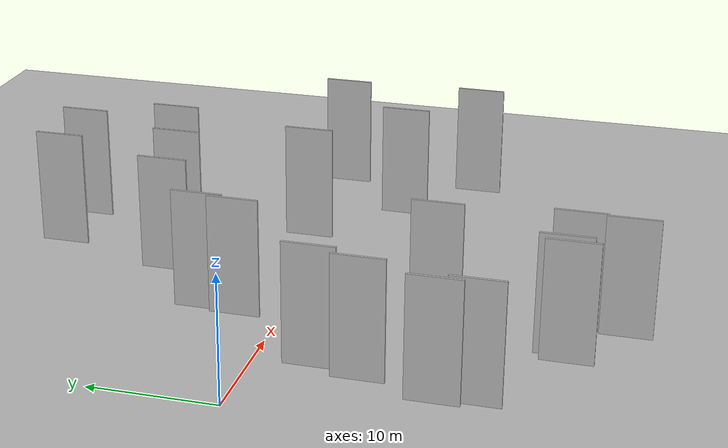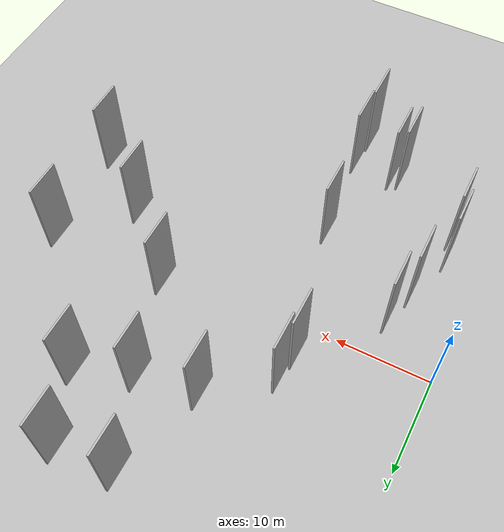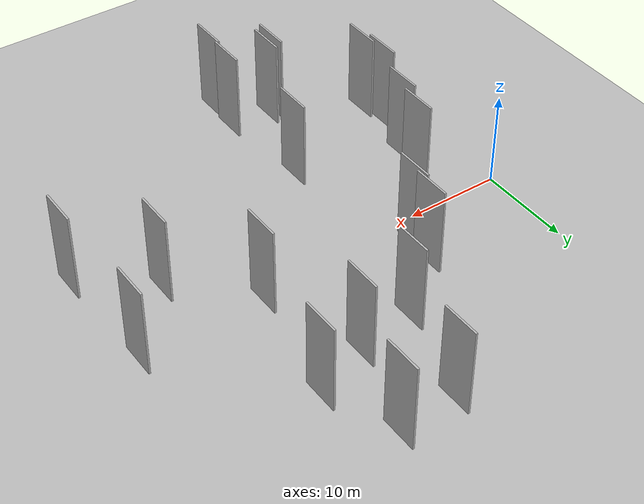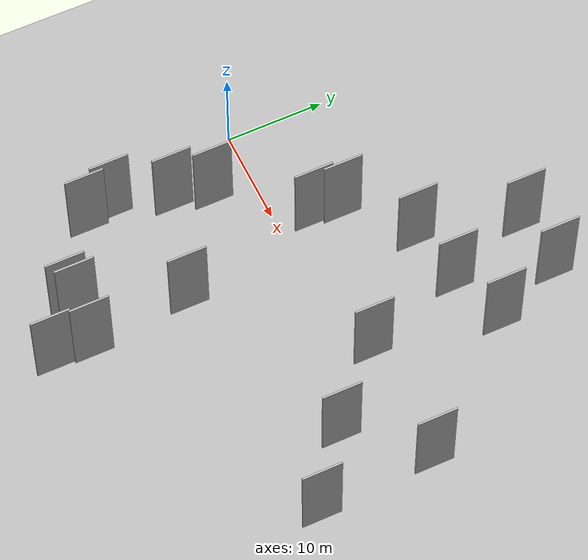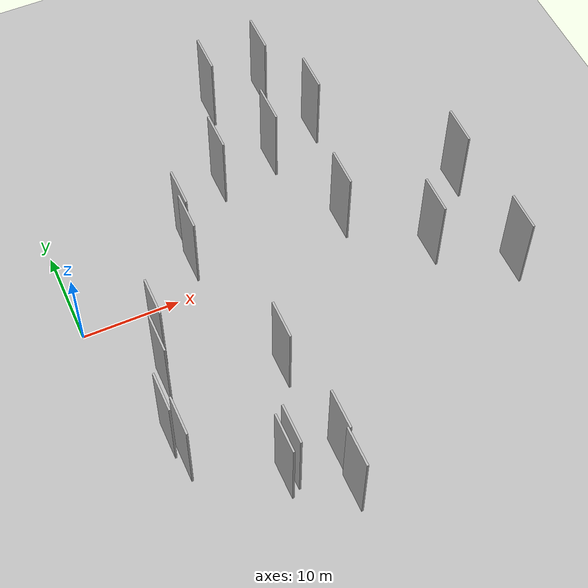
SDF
<?xml version="1.0" encoding="utf-8"?>

<sdf version="1.6">

   <world name="default">

      <gui fullscreen="0">

         <camera name="user_camera">

            <pose>-15 0 4.57585 0 0 0</pose>

            <view_controller>orbit</view_controller>

         </camera>

      </gui>

      <scene>

         <sky>

           <clouds>

             <speed>12</speed>

           </clouds>

         </sky>

         <ambient>0.4 0.4 0.4 1</ambient>

         <background>0.7 0.7 0.7 1</background>

         <shadows>1</shadows>

      </scene>

      <gravity>0 0 -9.8066</gravity>

      <magnetic_field>6e-06 2.3e-05 -4.2e-05</magnetic_field>

      <physics default="0" name="default_physics" type="ode">

         <ode>

            <solver>

               <type>quick</type>

               <iters>10</iters>

               <sor>1.0</sor>

               <use_dynamic_moi_rescaling>0</use_dynamic_moi_rescaling>

            </solver>

            <constraints>

               <cfm>0</cfm>

               <erp>0.2</erp>

               <contact_max_correcting_vel>100</contact_max_correcting_vel>

               <contact_surface_layer>0.001</contact_surface_layer>

            </constraints>

         </ode>

         <max_step_size>0.004</max_step_size>

         <real_time_factor>1</real_time_factor>

         <real_time_update_rate>250</real_time_update_rate>

      </physics>

      <light name="sun" type="directional">

         <cast_shadows>1</cast_shadows>

         <pose>0 0 10 0 0 0</pose>

         <diffuse>0.8 0.8 0.8 1</diffuse>

         <specular>0.2 0.2 0.2 1</specular>

         <attenuation>

            <range>1000</range>

            <constant>0.9</constant>

            <linear>0.01</linear>

            <quadratic>0.001</quadratic>

         </attenuation>

         <direction>-0.5 0.1 -0.9</direction>

      </light>

      <include>

         <name>ground_plane_1</name>

         <uri>model://HANNAS_ground_plane</uri>

         <pose>0 0 0  0 0 0</pose>

      </include>

      <include>

         <name>ground_plane_2</name>

         <uri>model://HANNAS_ground_plane</uri>

         <pose>100 0 0  0 0 0</pose>

      </include>

      <model name="HANNAS_wall_1">

         <static>1</static>

         <pose frame="">3.5172 -14.0131 0.0 0.000000 0.000000 1.570796</pose>

         <link name="link">

            <pose frame="">0 0 5.00 0 0 0</pose>

            <collision name="collision">

               <geometry>

                  <box>

                     <size>4.00 0.2 10.00</size>

                  </box>

               </geometry>

               <max_contacts>10</max_contacts>

               <surface>

                  <contact>

                     <ode/>

                  </contact>

                  <bounce/>

                  <friction>

                     <torsional>

                        <ode/>

                     </torsional>

                     <ode/>

                  </friction>

               </surface>

            </collision>

            <visual name="visual">

               <cast_shadows>0</cast_shadows>

               <geometry>

                  <box>

                     <size>4.00 0.2 10.00</size>

                  </box>

               </geometry>

               <material>

                  <script>

                     <uri>model://HANNAS_wall/materials/scripts</uri>

                     <uri>model://HANNAS_wall/materials/textures</uri>

                     <name>vrc/HANNAS_wall</name>

                  </script>

               </material>

            </visual>

            <self_collide>0</self_collide>

            <enable_wind>0</enable_wind>

            <kinematic>0</kinematic>

         </link>

      </model>

      <model name="HANNAS_wall_2">

         <static>1</static>

         <pose frame="">5.2974 -8.2992 0.0 0.000000 0.000000 1.570796</pose>

         <link name="link">

            <pose frame="">0 0 5.00 0 0 0</pose>

            <collision name="collision">

               <geometry>

                  <box>

                     <size>4.00 0.2 10.00</size>

                  </box>

               </geometry>

               <max_contacts>10</max_contacts>

               <surface>

                  <contact>

                     <ode/>

                  </contact>

                  <bounce/>

                  <friction>

                     <torsional>

                        <ode/>

                     </torsional>

                     <ode/>

                  </friction>

               </surface>

            </collision>

            <visual name="visual">

               <cast_shadows>0</cast_shadows>

               <geometry>

                  <box>

                     <size>4.00 0.2 10.00</size>

                  </box>

               </geometry>

               <material>

                  <script>

                     <uri>model://HANNAS_wall/materials/scripts</uri>

                     <uri>model://HANNAS_wall/materials/textures</uri>

                     <name>vrc/HANNAS_wall</name>

                  </script>

               </material>

            </visual>

            <self_collide>0</self_collide>

            <enable_wind>0</enable_wind>

            <kinematic>0</kinematic>

         </link>

      </model>

      <model name="HANNAS_wall_3">

         <static>1</static>

         <pose frame="">19.0728 11.2092 0.0 0.000000 0.000000 1.570796</pose>

         <link name="link">

            <pose frame="">0 0 5.00 0 0 0</pose>

            <collision name="collision">

               <geometry>

                  <box>

                     <size>4.00 0.2 10.00</size>

                  </box>

               </geometry>

               <max_contacts>10</max_contacts>

               <surface>

                  <contact>

                     <ode/>

                  </contact>

                  <bounce/>

                  <friction>

                     <torsional>

                        <ode/>

                     </torsional>

                     <ode/>

                  </friction>

               </surface>

            </collision>

            <visual name="visual">

               <cast_shadows>0</cast_shadows>

               <geometry>

                  <box>

                     <size>4.00 0.2 10.00</size>

                  </box>

               </geometry>

               <material>

                  <script>

                     <uri>model://HANNAS_wall/materials/scripts</uri>

                     <uri>model://HANNAS_wall/materials/textures</uri>

                     <name>vrc/HANNAS_wall</name>

                  </script>

               </material>

            </visual>

            <self_collide>0</self_collide>

            <enable_wind>0</enable_wind>

            <kinematic>0</kinematic>

         </link>

      </model>

      <model name="HANNAS_wall_4">

         <static>1</static>

         <pose frame="">21.9829 21.2277 0.0 0.000000 0.000000 1.570796</pose>

         <link name="link">

            <pose frame="">0 0 5.00 0 0 0</pose>

            <collision name="collision">

               <geometry>

                  <box>

                     <size>4.00 0.2 10.00</size>

                  </box>

               </geometry>

               <max_contacts>10</max_contacts>

               <surface>

                  <contact>

                     <ode/>

                  </contact>

                  <bounce/>

                  <friction>

                     <torsional>

                        <ode/>

                     </torsional>

                     <ode/>

                  </friction>

               </surface>

            </collision>

            <visual name="visual">

               <cast_shadows>0</cast_shadows>

               <geometry>

                  <box>

                     <size>4.00 0.2 10.00</size>

                  </box>

               </geometry>

               <material>

                  <script>

                     <uri>model://HANNAS_wall/materials/scripts</uri>

                     <uri>model://HANNAS_wall/materials/textures</uri>

                     <name>vrc/HANNAS_wall</name>

                  </script>

               </material>

            </visual>

            <self_collide>0</self_collide>

            <enable_wind>0</enable_wind>

            <kinematic>0</kinematic>

         </link>

      </model>

      <model name="HANNAS_wall_5">

         <static>1</static>

         <pose frame="">11.7476 -22.0610 0.0 0.000000 0.000000 1.570796</pose>

         <link name="link">

            <pose frame="">0 0 5.00 0 0 0</pose>

            <collision name="collision">

               <geometry>

                  <box>

                     <size>4.00 0.2 10.00</size>

                  </box>

               </geometry>

               <max_contacts>10</max_contacts>

               <surface>

                  <contact>

                     <ode/>

                  </contact>

                  <bounce/>

                  <friction>

                     <torsional>

                        <ode/>

                     </torsional>

                     <ode/>

                  </friction>

               </surface>

            </collision>

            <visual name="visual">

               <cast_shadows>0</cast_shadows>

               <geometry>

                  <box>

                     <size>4.00 0.2 10.00</size>

                  </box>

               </geometry>

               <material>

                  <script>

                     <uri>model://HANNAS_wall/materials/scripts</uri>

                     <uri>model://HANNAS_wall/materials/textures</uri>

                     <name>vrc/HANNAS_wall</name>

                  </script>

               </material>

            </visual>

            <self_collide>0</self_collide>

            <enable_wind>0</enable_wind>

            <kinematic>0</kinematic>

         </link>

      </model>

      <model name="HANNAS_wall_6">

         <static>1</static>

         <pose frame="">13.1169 6.1873 0.0 0.000000 0.000000 1.570796</pose>

         <link name="link">

            <pose frame="">0 0 5.00 0 0 0</pose>

            <collision name="collision">

               <geometry>

                  <box>

                     <size>4.00 0.2 10.00</size>

                  </box>

               </geometry>

               <max_contacts>10</max_contacts>

               <surface>

                  <contact>

                     <ode/>

                  </contact>

                  <bounce/>

                  <friction>

                     <torsional>

                        <ode/>

                     </torsional>

                     <ode/>

                  </friction>

               </surface>

            </collision>

            <visual name="visual">

               <cast_shadows>0</cast_shadows>

               <geometry>

                  <box>

                     <size>4.00 0.2 10.00</size>

                  </box>

               </geometry>

               <material>

                  <script>

                     <uri>model://HANNAS_wall/materials/scripts</uri>

                     <uri>model://HANNAS_wall/materials/textures</uri>

                     <name>vrc/HANNAS_wall</name>

                  </script>

               </material>

            </visual>

            <self_collide>0</self_collide>

            <enable_wind>0</enable_wind>

            <kinematic>0</kinematic>

         </link>

      </model>

      <model name="HANNAS_wall_7">

         <static>1</static>

         <pose frame="">28.6198 1.9612 0.0 0.000000 0.000000 1.570796</pose>

         <link name="link">

            <pose frame="">0 0 5.00 0 0 0</pose>

            <collision name="collision">

               <geometry>

                  <box>

                     <size>4.00 0.2 10.00</size>

                  </box>

               </geometry>

               <max_contacts>10</max_contacts>

               <surface>

                  <contact>

                     <ode/>

                  </contact>

                  <bounce/>

                  <friction>

                     <torsional>

                        <ode/>

                     </torsional>

                     <ode/>

                  </friction>

               </surface>

            </collision>

            <visual name="visual">

               <cast_shadows>0</cast_shadows>

               <geometry>

                  <box>

                     <size>4.00 0.2 10.00</size>

                  </box>

               </geometry>

               <material>

                  <script>

                     <uri>model://HANNAS_wall/materials/scripts</uri>

                     <uri>model://HANNAS_wall/materials/textures</uri>

                     <name>vrc/HANNAS_wall</name>

                  </script>

               </material>

            </visual>

            <self_collide>0</self_collide>

            <enable_wind>0</enable_wind>

            <kinematic>0</kinematic>

         </link>

      </model>

      <model name="HANNAS_wall_8">

         <static>1</static>

         <pose frame="">31.0365 14.4860 0.0 0.000000 0.000000 1.570796</pose>

         <link name="link">

            <pose frame="">0 0 5.00 0 0 0</pose>

            <collision name="collision">

               <geometry>

                  <box>

                     <size>4.00 0.2 10.00</size>

                  </box>

               </geometry>

               <max_contacts>10</max_contacts>

               <surface>

                  <contact>

                     <ode/>

                  </contact>

                  <bounce/>

                  <friction>

                     <torsional>

                        <ode/>

                     </torsional>

                     <ode/>

                  </friction>

               </surface>

            </collision>

            <visual name="visual">

               <cast_shadows>0</cast_shadows>

               <geometry>

                  <box>

                     <size>4.00 0.2 10.00</size>

                  </box>

               </geometry>

               <material>

                  <script>

                     <uri>model://HANNAS_wall/materials/scripts</uri>

                     <uri>model://HANNAS_wall/materials/textures</uri>

                     <name>vrc/HANNAS_wall</name>

                  </script>

               </material>

            </visual>

            <self_collide>0</self_collide>

            <enable_wind>0</enable_wind>

            <kinematic>0</kinematic>

         </link>

      </model>

      <model name="HANNAS_wall_9">

         <static>1</static>

         <pose frame="">16.1525 -11.5254 0.0 0.000000 0.000000 1.570796</pose>

         <link name="link">

            <pose frame="">0 0 5.00 0 0 0</pose>

            <collision name="collision">

               <geometry>

                  <box>

                     <size>4.00 0.2 10.00</size>

                  </box>

               </geometry>

               <max_contacts>10</max_contacts>

               <surface>

                  <contact>

                     <ode/>

                  </contact>

                  <bounce/>

                  <friction>

                     <torsional>

                        <ode/>

                     </torsional>

                     <ode/>

                  </friction>

               </surface>

            </collision>

            <visual name="visual">

               <cast_shadows>0</cast_shadows>

               <geometry>

                  <box>

                     <size>4.00 0.2 10.00</size>

                  </box>

               </geometry>

               <material>

                  <script>

                     <uri>model://HANNAS_wall/materials/scripts</uri>

                     <uri>model://HANNAS_wall/materials/textures</uri>

                     <name>vrc/HANNAS_wall</name>

                  </script>

               </material>

            </visual>

            <self_collide>0</self_collide>

            <enable_wind>0</enable_wind>

            <kinematic>0</kinematic>

         </link>

      </model>

      <model name="HANNAS_wall_10">

         <static>1</static>

         <pose frame="">25.2956 12.3357 0.0 0.000000 0.000000 1.570796</pose>

         <link name="link">

            <pose frame="">0 0 5.00 0 0 0</pose>

            <collision name="collision">

               <geometry>

                  <box>

                     <size>4.00 0.2 10.00</size>

                  </box>

               </geometry>

               <max_contacts>10</max_contacts>

               <surface>

                  <contact>

                     <ode/>

                  </contact>

                  <bounce/>

                  <friction>

                     <torsional>

                        <ode/>

                     </torsional>

                     <ode/>

                  </friction>

               </surface>

            </collision>

            <visual name="visual">

               <cast_shadows>0</cast_shadows>

               <geometry>

                  <box>

                     <size>4.00 0.2 10.00</size>

                  </box>

               </geometry>

               <material>

                  <script>

                     <uri>model://HANNAS_wall/materials/scripts</uri>

                     <uri>model://HANNAS_wall/materials/textures</uri>

                     <name>vrc/HANNAS_wall</name>

                  </script>

               </material>

            </visual>

            <self_collide>0</self_collide>

            <enable_wind>0</enable_wind>

            <kinematic>0</kinematic>

         </link>

      </model>

      <model name="HANNAS_wall_11">

         <static>1</static>

         <pose frame="">42.1899 -9.8668 0.0 0.000000 0.000000 1.570796</pose>

         <link name="link">

            <pose frame="">0 0 5.00 0 0 0</pose>

            <collision name="collision">

               <geometry>

                  <box>

                     <size>4.00 0.2 10.00</size>

                  </box>

               </geometry>

               <max_contacts>10</max_contacts>

               <surface>

                  <contact>

                     <ode/>

                  </contact>

                  <bounce/>

                  <friction>

                     <torsional>

                        <ode/>

                     </torsional>

                     <ode/>

                  </friction>

               </surface>

            </collision>

            <visual name="visual">

               <cast_shadows>0</cast_shadows>

               <geometry>

                  <box>

                     <size>4.00 0.2 10.00</size>

                  </box>

               </geometry>

               <material>

                  <script>

                     <uri>model://HANNAS_wall/materials/scripts</uri>

                     <uri>model://HANNAS_wall/materials/textures</uri>

                     <name>vrc/HANNAS_wall</name>

                  </script>

               </material>

            </visual>

            <self_collide>0</self_collide>

            <enable_wind>0</enable_wind>

            <kinematic>0</kinematic>

         </link>

      </model>

      <model name="HANNAS_wall_12">

         <static>1</static>

         <pose frame="">12.6764 -21.4972 0.0 0.000000 0.000000 1.570796</pose>

         <link name="link">

            <pose frame="">0 0 5.00 0 0 0</pose>

            <collision name="collision">

               <geometry>

                  <box>

                     <size>4.00 0.2 10.00</size>

                  </box>

               </geometry>

               <max_contacts>10</max_contacts>

               <surface>

                  <contact>

                     <ode/>

                  </contact>

                  <bounce/>

                  <friction>

                     <torsional>

                        <ode/>

                     </torsional>

                     <ode/>

                  </friction>

               </surface>

            </collision>

            <visual name="visual">

               <cast_shadows>0</cast_shadows>

               <geometry>

                  <box>

                     <size>4.00 0.2 10.00</size>

                  </box>

               </geometry>

               <material>

                  <script>

                     <uri>model://HANNAS_wall/materials/scripts</uri>

                     <uri>model://HANNAS_wall/materials/textures</uri>

                     <name>vrc/HANNAS_wall</name>

                  </script>

               </material>

            </visual>

            <self_collide>0</self_collide>

            <enable_wind>0</enable_wind>

            <kinematic>0</kinematic>

         </link>

      </model>

      <model name="HANNAS_wall_13">

         <static>1</static>

         <pose frame="">16.9391 -25.7244 0.0 0.000000 0.000000 1.570796</pose>

         <link name="link">

            <pose frame="">0 0 5.00 0 0 0</pose>

            <collision name="collision">

               <geometry>

                  <box>

                     <size>4.00 0.2 10.00</size>

                  </box>

               </geometry>

               <max_contacts>10</max_contacts>

               <surface>

                  <contact>

                     <ode/>

                  </contact>

                  <bounce/>

                  <friction>

                     <torsional>

                        <ode/>

                     </torsional>

                     <ode/>

                  </friction>

               </surface>

            </collision>

            <visual name="visual">

               <cast_shadows>0</cast_shadows>

               <geometry>

                  <box>

                     <size>4.00 0.2 10.00</size>

                  </box>

               </geometry>

               <material>

                  <script>

                     <uri>model://HANNAS_wall/materials/scripts</uri>

                     <uri>model://HANNAS_wall/materials/textures</uri>

                     <name>vrc/HANNAS_wall</name>

                  </script>

               </material>

            </visual>

            <self_collide>0</self_collide>

            <enable_wind>0</enable_wind>

            <kinematic>0</kinematic>

         </link>

      </model>

      <model name="HANNAS_wall_14">

         <static>1</static>

         <pose frame="">17.1802 -21.9147 0.0 0.000000 0.000000 1.570796</pose>

         <link name="link">

            <pose frame="">0 0 5.00 0 0 0</pose>

            <collision name="collision">

               <geometry>

                  <box>

                     <size>4.00 0.2 10.00</size>

                  </box>

               </geometry>

               <max_contacts>10</max_contacts>

               <surface>

                  <contact>

                     <ode/>

                  </contact>

                  <bounce/>

                  <friction>

                     <torsional>

                        <ode/>

                     </torsional>

                     <ode/>

                  </friction>

               </surface>

            </collision>

            <visual name="visual">

               <cast_shadows>0</cast_shadows>

               <geometry>

                  <box>

                     <size>4.00 0.2 10.00</size>

                  </box>

               </geometry>

               <material>

                  <script>

                     <uri>model://HANNAS_wall/materials/scripts</uri>

                     <uri>model://HANNAS_wall/materials/textures</uri>

                     <name>vrc/HANNAS_wall</name>

                  </script>

               </material>

            </visual>

            <self_collide>0</self_collide>

            <enable_wind>0</enable_wind>

            <kinematic>0</kinematic>

         </link>

      </model>

      <model name="HANNAS_wall_15">

         <static>1</static>

         <pose frame="">28.1559 21.6206 0.0 0.000000 0.000000 1.570796</pose>

         <link name="link">

            <pose frame="">0 0 5.00 0 0 0</pose>

            <collision name="collision">

               <geometry>

                  <box>

                     <size>4.00 0.2 10.00</size>

                  </box>

               </geometry>

               <max_contacts>10</max_contacts>

               <surface>

                  <contact>

                     <ode/>

                  </contact>

                  <bounce/>

                  <friction>

                     <torsional>

                        <ode/>

                     </torsional>

                     <ode/>

                  </friction>

               </surface>

            </collision>

            <visual name="visual">

               <cast_shadows>0</cast_shadows>

               <geometry>

                  <box>

                     <size>4.00 0.2 10.00</size>

                  </box>

               </geometry>

               <material>

                  <script>

                     <uri>model://HANNAS_wall/materials/scripts</uri>

                     <uri>model://HANNAS_wall/materials/textures</uri>

                     <name>vrc/HANNAS_wall</name>

                  </script>

               </material>

            </visual>

            <self_collide>0</self_collide>

            <enable_wind>0</enable_wind>

            <kinematic>0</kinematic>

         </link>

      </model>

      <model name="HANNAS_wall_16">

         <static>1</static>

         <pose frame="">41.6382 1.9834 0.0 0.000000 0.000000 1.570796</pose>

         <link name="link">

            <pose frame="">0 0 5.00 0 0 0</pose>

            <collision name="collision">

               <geometry>

                  <box>

                     <size>4.00 0.2 10.00</size>

                  </box>

               </geometry>

               <max_contacts>10</max_contacts>

               <surface>

                  <contact>

                     <ode/>

                  </contact>

                  <bounce/>

                  <friction>

                     <torsional>

                        <ode/>

                     </torsional>

                     <ode/>

                  </friction>

               </surface>

            </collision>

            <visual name="visual">

               <cast_shadows>0</cast_shadows>

               <geometry>

                  <box>

                     <size>4.00 0.2 10.00</size>

                  </box>

               </geometry>

               <material>

                  <script>

                     <uri>model://HANNAS_wall/materials/scripts</uri>

                     <uri>model://HANNAS_wall/materials/textures</uri>

                     <name>vrc/HANNAS_wall</name>

                  </script>

               </material>

            </visual>

            <self_collide>0</self_collide>

            <enable_wind>0</enable_wind>

            <kinematic>0</kinematic>

         </link>

      </model>

      <model name="HANNAS_wall_17">

         <static>1</static>

         <pose frame="">35.4722 -4.6636 0.0 0.000000 0.000000 1.570796</pose>

         <link name="link">

            <pose frame="">0 0 5.00 0 0 0</pose>

            <collision name="collision">

               <geometry>

                  <box>

                     <size>4.00 0.2 10.00</size>

                  </box>

               </geometry>

               <max_contacts>10</max_contacts>

               <surface>

                  <contact>

                     <ode/>

                  </contact>

                  <bounce/>

                  <friction>

                     <torsional>

                        <ode/>

                     </torsional>

                     <ode/>

                  </friction>

               </surface>

            </collision>

            <visual name="visual">

               <cast_shadows>0</cast_shadows>

               <geometry>

                  <box>

                     <size>4.00 0.2 10.00</size>

                  </box>

               </geometry>

               <material>

                  <script>

                     <uri>model://HANNAS_wall/materials/scripts</uri>

                     <uri>model://HANNAS_wall/materials/textures</uri>

                     <name>vrc/HANNAS_wall</name>

                  </script>

               </material>

            </visual>

            <self_collide>0</self_collide>

            <enable_wind>0</enable_wind>

            <kinematic>0</kinematic>

         </link>

      </model>

      <model name="HANNAS_wall_18">

         <static>1</static>

         <pose frame="">4.0375 -16.7904 0.0 0.000000 0.000000 1.570796</pose>

         <link name="link">

            <pose frame="">0 0 5.00 0 0 0</pose>

            <collision name="collision">

               <geometry>

                  <box>

                     <size>4.00 0.2 10.00</size>

                  </box>

               </geometry>

               <max_contacts>10</max_contacts>

               <surface>

                  <contact>

                     <ode/>

                  </contact>

                  <bounce/>

                  <friction>

                     <torsional>

                        <ode/>

                     </torsional>

                     <ode/>

                  </friction>

               </surface>

            </collision>

            <visual name="visual">

               <cast_shadows>0</cast_shadows>

               <geometry>

                  <box>

                     <size>4.00 0.2 10.00</size>

                  </box>

               </geometry>

               <material>

                  <script>

                     <uri>model://HANNAS_wall/materials/scripts</uri>

                     <uri>model://HANNAS_wall/materials/textures</uri>

                     <name>vrc/HANNAS_wall</name>

                  </script>

               </material>

            </visual>

            <self_collide>0</self_collide>

            <enable_wind>0</enable_wind>

            <kinematic>0</kinematic>

         </link>

      </model>

      <model name="HANNAS_wall_19">

         <static>1</static>

         <pose frame="">12.7436 3.2574 0.0 0.000000 0.000000 1.570796</pose>

         <link name="link">

            <pose frame="">0 0 5.00 0 0 0</pose>

            <collision name="collision">

               <geometry>

                  <box>

                     <size>4.00 0.2 10.00</size>

                  </box>

               </geometry>

               <max_contacts>10</max_contacts>

               <surface>

                  <contact>

                     <ode/>

                  </contact>

                  <bounce/>

                  <friction>

                     <torsional>

                        <ode/>

                     </torsional>

                     <ode/>

                  </friction>

               </surface>

            </collision>

            <visual name="visual">

               <cast_shadows>0</cast_shadows>

               <geometry>

                  <box>

                     <size>4.00 0.2 10.00</size>

                  </box>

               </geometry>

               <material>

                  <script>

                     <uri>model://HANNAS_wall/materials/scripts</uri>

                     <uri>model://HANNAS_wall/materials/textures</uri>

                     <name>vrc/HANNAS_wall</name>

                  </script>

               </material>

            </visual>

            <self_collide>0</self_collide>

            <enable_wind>0</enable_wind>

            <kinematic>0</kinematic>

         </link>

      </model>

      <model name="HANNAS_wall_20">

         <static>1</static>

         <pose frame="">6.3170 -4.4895 0.0 0.000000 0.000000 1.570796</pose>

         <link name="link">

            <pose frame="">0 0 5.00 0 0 0</pose>

            <collision name="collision">

               <geometry>

                  <box>

                     <size>4.00 0.2 10.00</size>

                  </box>

               </geometry>

               <max_contacts>10</max_contacts>

               <surface>

                  <contact>

                     <ode/>

                  </contact>

                  <bounce/>

                  <friction>

                     <torsional>

                        <ode/>

                     </torsional>

                     <ode/>

                  </friction>

               </surface>

            </collision>

            <visual name="visual">

               <cast_shadows>0</cast_shadows>

               <geometry>

                  <box>

                     <size>4.00 0.2 10.00</size>

                  </box>

               </geometry>

               <material>

                  <script>

                     <uri>model://HANNAS_wall/materials/scripts</uri>

                     <uri>model://HANNAS_wall/materials/textures</uri>

                     <name>vrc/HANNAS_wall</name>

                  </script>

               </material>

            </visual>

            <self_collide>0</self_collide>

            <enable_wind>0</enable_wind>

            <kinematic>0</kinematic>

         </link>

      </model>

   </world>

</sdf>

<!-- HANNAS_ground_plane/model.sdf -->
<sdf version="1.4">
<model name="HANNAS_ground_plane">
  <static>true</static>
    <link name="link">
      <collision name="collision">
        <geometry>
          <plane>
            <normal>0 0 1</normal>
            <size>1000 1000</size>
          </plane>
        </geometry>
        <surface>
          <friction>
            <ode>
              <mu>100</mu>
              <mu2>50</mu2>
            </ode>
          </friction>
        </surface>
      </collision>
      <visual name="visual">
        <cast_shadows>false</cast_shadows>
        <geometry>
          <plane>
            <normal>0 0 1</normal>
            <size>1000 1000</size>
          </plane>
        </geometry>
        <material>
          <script>
            <uri>model://HANNAS_ground_plane/materials/scripts/HANNAS_ground_plane.material</uri>
	    <uri>model://HANNAS_ground_plane/materials/textures</uri>
            <name>HANNASGroundPlane/Image</name>
          </script>
        </material>
      </visual>
    </link>
  </model>
</sdf>
